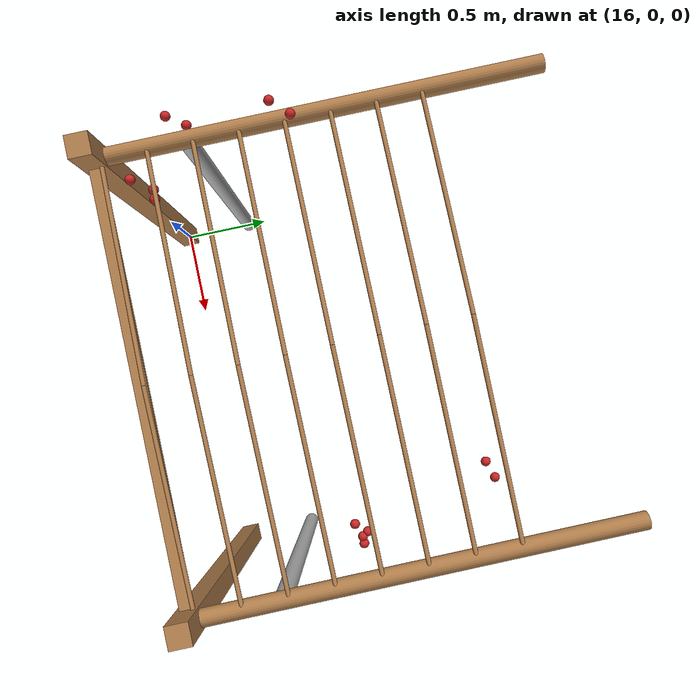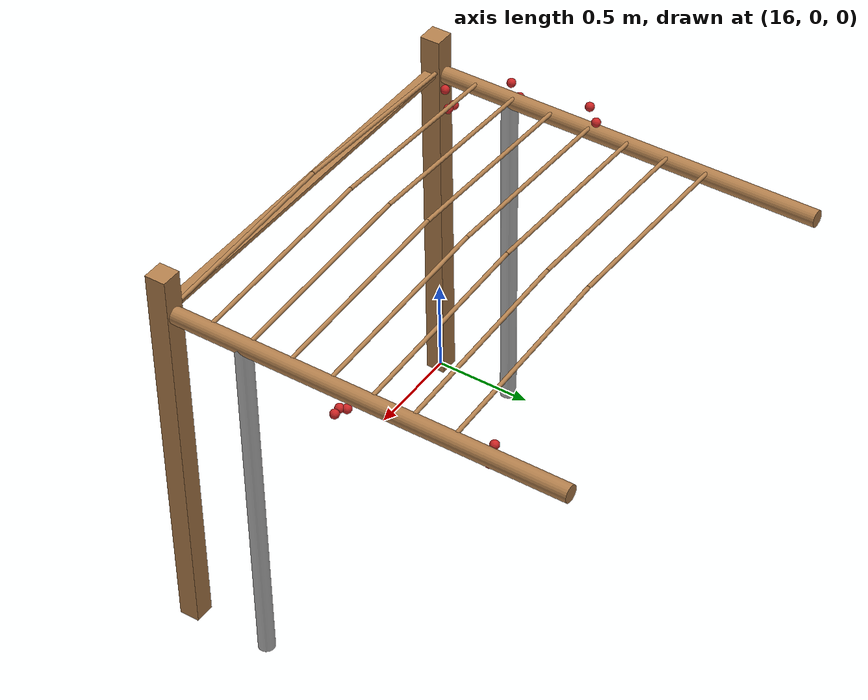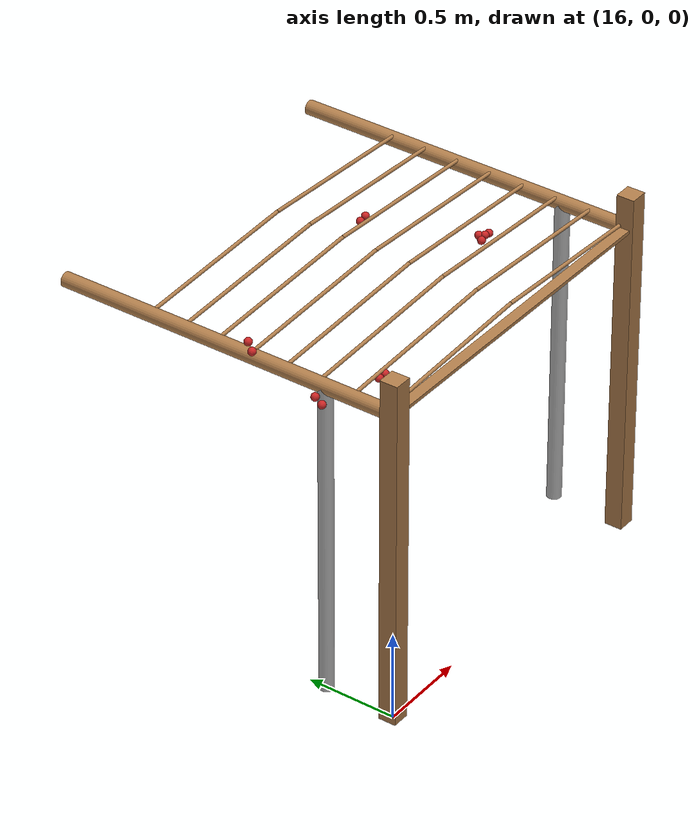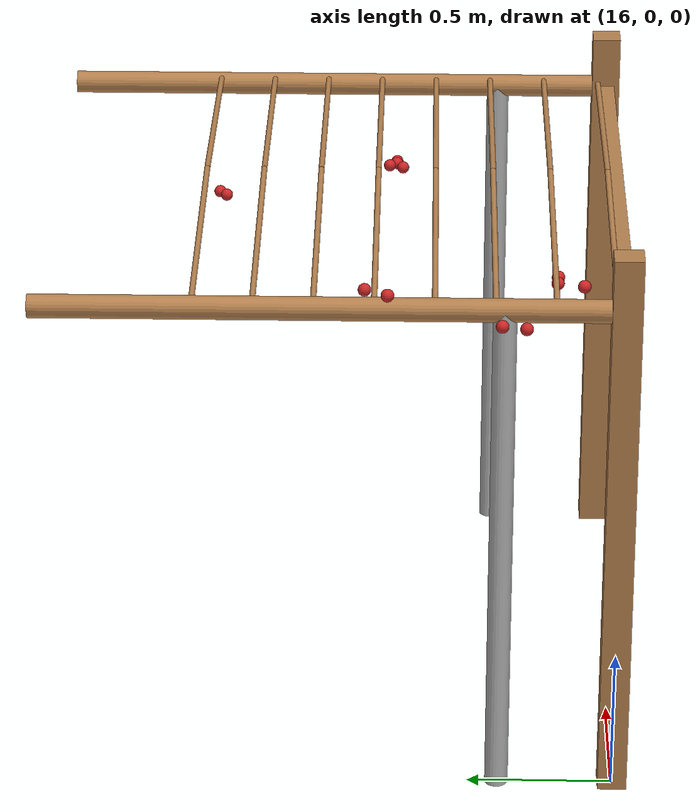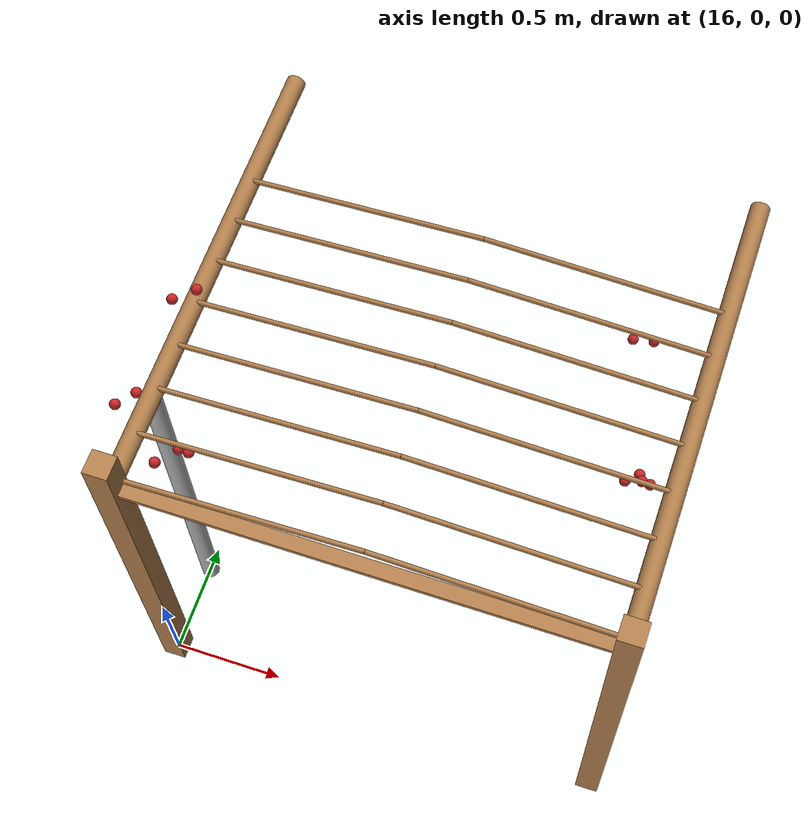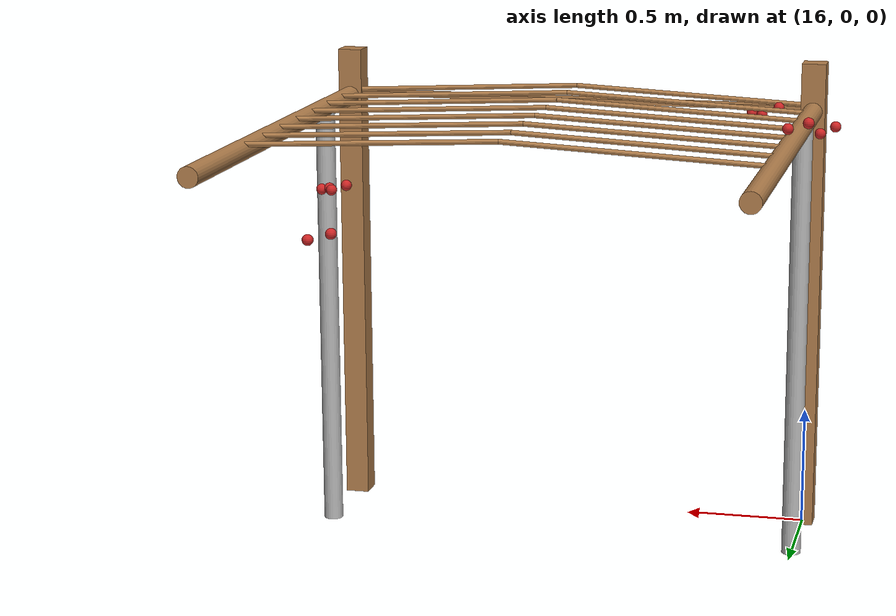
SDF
<sdf version="1.4">
 <model name="pergola">
  <include><name>post_88</name><pose>16.0 0.0 0 0 0 0</pose><uri>model://post</uri></include>
  <include><name>post_99</name><pose>18.0 0.0 0 0 0 0</pose><uri>model://post</uri></include>
  <link name="beam_88">
   <pose>17.0 0.0 1.81 0 0 0</pose>
   <collision name="collision"><geometry><box><size>2.0 0.06 0.02</size></box></geometry></collision>
   <visual name="visual">
    <geometry><box><size>2.0 0.06 0.02</size></box></geometry>
    <material><script><name>Gazebo/Wood</name></script></material>
   </visual>
   <inertial>
    <mass>5</mass>
    <inertia>
     <ixx>0.0016666666666666668</ixx>
     <ixy>0.0</ixy>
     <ixz>0.0</ixz>
     <iyy>1.6681666666666664</iyy>
     <iyz>0.0</iyz>
     <izz>1.6668333333333332</izz>
    </inertia>
   </inertial>
  </link>
  <include><name>tree_80</name><pose>16.0 0.4 0 0 0 0</pose><uri>model://tree_trunk</uri></include>
  <include><name>tree_90</name><pose>18.0 0.4 0 0 0 0</pose><uri>model://tree_trunk</uri></include>
  <link name="baseBranch_80">
   <pose>16.0 1.0 1.8 1.5707963267948966 0 0</pose>
   <collision name="collision">
    <geometry><cylinder><radius>0.04</radius><length>1.94</length></cylinder></geometry>
   </collision>
   <visual name="visual">
    <geometry><cylinder><radius>0.04</radius><length>1.94</length></cylinder></geometry>
    <material><script><name>Gazebo/WoodFloor</name></script></material>
   </visual>
   <inertial>
    <mass>10</mass>
    <inertia>
     <ixx>3.140333333333333</ixx>
     <ixy>0.0</ixy>
     <ixz>0.0</ixz>
     <iyy>3.140333333333333</iyy>
     <iyz>0.0</iyz>
     <izz>0.008</izz>
    </inertia>
   </inertial>
  </link>
  <link name="baseBranch_90">
   <pose>18.0 1.0 1.8 1.5707963267948966 0 0</pose>
   <collision name="collision">
    <geometry><cylinder><radius>0.04</radius><length>1.94</length></cylinder></geometry>
   </collision>
   <visual name="visual">
    <geometry><cylinder><radius>0.04</radius><length>1.94</length></cylinder></geometry>
    <material><script><name>Gazebo/WoodFloor</name></script></material>
   </visual>
   <inertial>
    <mass>10</mass>
    <inertia>
     <ixx>3.140333333333333</ixx>
     <ixy>0.0</ixy>
     <ixz>0.0</ixz>
     <iyy>3.140333333333333</iyy>
     <iyz>0.0</iyz>
     <izz>0.008</izz>
    </inertia>
   </inertial>
  </link>
  <link name="vine_1600">
   <pose>16.5 0.03 1.85 0 1.5208379310729538 0</pose>
   <collision name="collision">
    <geometry><cylinder><radius>0.01</radius><length>1.0012492197250393</length></cylinder></geometry>
   </collision>
   <visual name="visual">
    <geometry><cylinder><radius>0.01</radius><length>1.0012492197250393</length></cylinder></geometry>
    <material><script><name>Gazebo/WoodFloor</name></script></material>
   </visual>
   <inertial>
    <mass>5</mass>
    <inertia>
     <ixx>0.41783333333333345</ixx>
     <ixy>0.0</ixy>
     <ixz>0.0</ixz>
     <iyy>0.41783333333333345</iyy>
     <iyz>0.0</iyz>
     <izz>0.00025</izz>
    </inertia>
   </inertial>
  </link>
  <link name="vine_1601">
   <pose>17.5 0.03 1.85 0 -1.5208379310729538 0</pose>
   <collision name="collision">
    <geometry><cylinder><radius>0.01</radius><length>1.0012492197250393</length></cylinder></geometry>
   </collision>
   <visual name="visual">
    <geometry><cylinder><radius>0.01</radius><length>1.0012492197250393</length></cylinder></geometry>
    <material><script><name>Gazebo/WoodFloor</name></script></material>
   </visual>
   <inertial>
    <mass>5</mass>
    <inertia>
     <ixx>0.41783333333333345</ixx>
     <ixy>0.0</ixy>
     <ixz>0.0</ixz>
     <iyy>0.41783333333333345</iyy>
     <iyz>0.0</iyz>
     <izz>0.00025</izz>
    </inertia>
   </inertial>
  </link>
  <link name="vine_1602">
   <pose>16.5 0.23 1.85 0 1.5208379310729538 0</pose>
   <collision name="collision">
    <geometry><cylinder><radius>0.01</radius><length>1.0012492197250393</length></cylinder></geometry>
   </collision>
   <visual name="visual">
    <geometry><cylinder><radius>0.01</radius><length>1.0012492197250393</length></cylinder></geometry>
    <material><script><name>Gazebo/WoodFloor</name></script></material>
   </visual>
   <inertial>
    <mass>5</mass>
    <inertia>
     <ixx>0.41783333333333345</ixx>
     <ixy>0.0</ixy>
     <ixz>0.0</ixz>
     <iyy>0.41783333333333345</iyy>
     <iyz>0.0</iyz>
     <izz>0.00025</izz>
    </inertia>
   </inertial>
  </link>
  <link name="vine_1603">
   <pose>17.5 0.23 1.85 0 -1.5208379310729538 0</pose>
   <collision name="collision">
    <geometry><cylinder><radius>0.01</radius><length>1.0012492197250393</length></cylinder></geometry>
   </collision>
   <visual name="visual">
    <geometry><cylinder><radius>0.01</radius><length>1.0012492197250393</length></cylinder></geometry>
    <material><script><name>Gazebo/WoodFloor</name></script></material>
   </visual>
   <inertial>
    <mass>5</mass>
    <inertia>
     <ixx>0.41783333333333345</ixx>
     <ixy>0.0</ixy>
     <ixz>0.0</ixz>
     <iyy>0.41783333333333345</iyy>
     <iyz>0.0</iyz>
     <izz>0.00025</izz>
    </inertia>
   </inertial>
  </link>
  <link name="vine_1604">
   <pose>16.5 0.43000000000000005 1.85 0 1.5208379310729538 0</pose>
   <collision name="collision">
    <geometry><cylinder><radius>0.01</radius><length>1.0012492197250393</length></cylinder></geometry>
   </collision>
   <visual name="visual">
    <geometry><cylinder><radius>0.01</radius><length>1.0012492197250393</length></cylinder></geometry>
    <material><script><name>Gazebo/WoodFloor</name></script></material>
   </visual>
   <inertial>
    <mass>5</mass>
    <inertia>
     <ixx>0.41783333333333345</ixx>
     <ixy>0.0</ixy>
     <ixz>0.0</ixz>
     <iyy>0.41783333333333345</iyy>
     <iyz>0.0</iyz>
     <izz>0.00025</izz>
    </inertia>
   </inertial>
  </link>
  <link name="vine_1605">
   <pose>17.5 0.43000000000000005 1.85 0 -1.5208379310729538 0</pose>
   <collision name="collision">
    <geometry><cylinder><radius>0.01</radius><length>1.0012492197250393</length></cylinder></geometry>
   </collision>
   <visual name="visual">
    <geometry><cylinder><radius>0.01</radius><length>1.0012492197250393</length></cylinder></geometry>
    <material><script><name>Gazebo/WoodFloor</name></script></material>
   </visual>
   <inertial>
    <mass>5</mass>
    <inertia>
     <ixx>0.41783333333333345</ixx>
     <ixy>0.0</ixy>
     <ixz>0.0</ixz>
     <iyy>0.41783333333333345</iyy>
     <iyz>0.0</iyz>
     <izz>0.00025</izz>
    </inertia>
   </inertial>
  </link>
  <link name="vine_1606">
   <pose>16.5 0.6300000000000001 1.85 0 1.5208379310729538 0</pose>
   <collision name="collision">
    <geometry><cylinder><radius>0.01</radius><length>1.0012492197250393</length></cylinder></geometry>
   </collision>
   <visual name="visual">
    <geometry><cylinder><radius>0.01</radius><length>1.0012492197250393</length></cylinder></geometry>
    <material><script><name>Gazebo/WoodFloor</name></script></material>
   </visual>
   <inertial>
    <mass>5</mass>
    <inertia>
     <ixx>0.41783333333333345</ixx>
     <ixy>0.0</ixy>
     <ixz>0.0</ixz>
     <iyy>0.41783333333333345</iyy>
     <iyz>0.0</iyz>
     <izz>0.00025</izz>
    </inertia>
   </inertial>
  </link>
  <link name="vine_1607">
   <pose>17.5 0.6300000000000001 1.85 0 -1.5208379310729538 0</pose>
   <collision name="collision">
    <geometry><cylinder><radius>0.01</radius><length>1.0012492197250393</length></cylinder></geometry>
   </collision>
   <visual name="visual">
    <geometry><cylinder><radius>0.01</radius><length>1.0012492197250393</length></cylinder></geometry>
    <material><script><name>Gazebo/WoodFloor</name></script></material>
   </visual>
   <inertial>
    <mass>5</mass>
    <inertia>
     <ixx>0.41783333333333345</ixx>
     <ixy>0.0</ixy>
     <ixz>0.0</ixz>
     <iyy>0.41783333333333345</iyy>
     <iyz>0.0</iyz>
     <izz>0.00025</izz>
    </inertia>
   </inertial>
  </link>
  <link name="vine_1608">
   <pose>16.5 0.8300000000000001 1.85 0 1.5208379310729538 0</pose>
   <collision name="collision">
    <geometry><cylinder><radius>0.01</radius><length>1.0012492197250393</length></cylinder></geometry>
   </collision>
   <visual name="visual">
    <geometry><cylinder><radius>0.01</radius><length>1.0012492197250393</length></cylinder></geometry>
    <material><script><name>Gazebo/WoodFloor</name></script></material>
   </visual>
   <inertial>
    <mass>5</mass>
    <inertia>
     <ixx>0.41783333333333345</ixx>
     <ixy>0.0</ixy>
     <ixz>0.0</ixz>
     <iyy>0.41783333333333345</iyy>
     <iyz>0.0</iyz>
     <izz>0.00025</izz>
    </inertia>
   </inertial>
  </link>
  <link name="vine_1609">
   <pose>17.5 0.8300000000000001 1.85 0 -1.5208379310729538 0</pose>
   <collision name="collision">
    <geometry><cylinder><radius>0.01</radius><length>1.0012492197250393</length></cylinder></geometry>
   </collision>
   <visual name="visual">
    <geometry><cylinder><radius>0.01</radius><length>1.0012492197250393</length></cylinder></geometry>
    <material><script><name>Gazebo/WoodFloor</name></script></material>
   </visual>
   <inertial>
    <mass>5</mass>
    <inertia>
     <ixx>0.41783333333333345</ixx>
     <ixy>0.0</ixy>
     <ixz>0.0</ixz>
     <iyy>0.41783333333333345</iyy>
     <iyz>0.0</iyz>
     <izz>0.00025</izz>
    </inertia>
   </inertial>
  </link>
  <link name="vine_1610">
   <pose>16.5 1.03 1.85 0 1.5208379310729538 0</pose>
   <collision name="collision">
    <geometry><cylinder><radius>0.01</radius><length>1.0012492197250393</length></cylinder></geometry>
   </collision>
   <visual name="visual">
    <geometry><cylinder><radius>0.01</radius><length>1.0012492197250393</length></cylinder></geometry>
    <material><script><name>Gazebo/WoodFloor</name></script></material>
   </visual>
   <inertial>
    <mass>5</mass>
    <inertia>
     <ixx>0.41783333333333345</ixx>
     <ixy>0.0</ixy>
     <ixz>0.0</ixz>
     <iyy>0.41783333333333345</iyy>
     <iyz>0.0</iyz>
     <izz>0.00025</izz>
    </inertia>
   </inertial>
  </link>
  <link name="vine_1611">
   <pose>17.5 1.03 1.85 0 -1.5208379310729538 0</pose>
   <collision name="collision">
    <geometry><cylinder><radius>0.01</radius><length>1.0012492197250393</length></cylinder></geometry>
   </collision>
   <visual name="visual">
    <geometry><cylinder><radius>0.01</radius><length>1.0012492197250393</length></cylinder></geometry>
    <material><script><name>Gazebo/WoodFloor</name></script></material>
   </visual>
   <inertial>
    <mass>5</mass>
    <inertia>
     <ixx>0.41783333333333345</ixx>
     <ixy>0.0</ixy>
     <ixz>0.0</ixz>
     <iyy>0.41783333333333345</iyy>
     <iyz>0.0</iyz>
     <izz>0.00025</izz>
    </inertia>
   </inertial>
  </link>
  <link name="vine_1612">
   <pose>16.5 1.2300000000000002 1.85 0 1.5208379310729538 0</pose>
   <collision name="collision">
    <geometry><cylinder><radius>0.01</radius><length>1.0012492197250393</length></cylinder></geometry>
   </collision>
   <visual name="visual">
    <geometry><cylinder><radius>0.01</radius><length>1.0012492197250393</length></cylinder></geometry>
    <material><script><name>Gazebo/WoodFloor</name></script></material>
   </visual>
   <inertial>
    <mass>5</mass>
    <inertia>
     <ixx>0.41783333333333345</ixx>
     <ixy>0.0</ixy>
     <ixz>0.0</ixz>
     <iyy>0.41783333333333345</iyy>
     <iyz>0.0</iyz>
     <izz>0.00025</izz>
    </inertia>
   </inertial>
  </link>
  <link name="vine_1613">
   <pose>17.5 1.2300000000000002 1.85 0 -1.5208379310729538 0</pose>
   <collision name="collision">
    <geometry><cylinder><radius>0.01</radius><length>1.0012492197250393</length></cylinder></geometry>
   </collision>
   <visual name="visual">
    <geometry><cylinder><radius>0.01</radius><length>1.0012492197250393</length></cylinder></geometry>
    <material><script><name>Gazebo/WoodFloor</name></script></material>
   </visual>
   <inertial>
    <mass>5</mass>
    <inertia>
     <ixx>0.41783333333333345</ixx>
     <ixy>0.0</ixy>
     <ixz>0.0</ixz>
     <iyy>0.41783333333333345</iyy>
     <iyz>0.0</iyz>
     <izz>0.00025</izz>
    </inertia>
   </inertial>
  </link>
  <link name="vine_1614">
   <pose>16.5 1.4300000000000002 1.85 0 1.5208379310729538 0</pose>
   <collision name="collision">
    <geometry><cylinder><radius>0.01</radius><length>1.0012492197250393</length></cylinder></geometry>
   </collision>
   <visual name="visual">
    <geometry><cylinder><radius>0.01</radius><length>1.0012492197250393</length></cylinder></geometry>
    <material><script><name>Gazebo/WoodFloor</name></script></material>
   </visual>
   <inertial>
    <mass>5</mass>
    <inertia>
     <ixx>0.41783333333333345</ixx>
     <ixy>0.0</ixy>
     <ixz>0.0</ixz>
     <iyy>0.41783333333333345</iyy>
     <iyz>0.0</iyz>
     <izz>0.00025</izz>
    </inertia>
   </inertial>
  </link>
  <link name="vine_1615">
   <pose>17.5 1.4300000000000002 1.85 0 -1.5208379310729538 0</pose>
   <collision name="collision">
    <geometry><cylinder><radius>0.01</radius><length>1.0012492197250393</length></cylinder></geometry>
   </collision>
   <visual name="visual">
    <geometry><cylinder><radius>0.01</radius><length>1.0012492197250393</length></cylinder></geometry>
    <material><script><name>Gazebo/WoodFloor</name></script></material>
   </visual>
   <inertial>
    <mass>5</mass>
    <inertia>
     <ixx>0.41783333333333345</ixx>
     <ixy>0.0</ixy>
     <ixz>0.0</ixz>
     <iyy>0.41783333333333345</iyy>
     <iyz>0.0</iyz>
     <izz>0.00025</izz>
    </inertia>
   </inertial>
  </link>
  <link name="fruit_54">
   <pose>17.80197323627862 0.7494574462967124 1.5469227794787848 0 0 0</pose>
   <collision name="fruit_collision_54"><geometry><sphere><radius>0.022</radius></sphere></geometry></collision>
   <visual name="visual">
    <geometry><sphere><radius>0.022</radius></sphere></geometry>
    <material><script><name>Gazebo/Red</name></script></material>
   </visual>
   <inertial>
    <mass>0.05</mass>
    <inertia>
     <ixx>9.679999999999999e-06</ixx>
     <ixy>0.0</ixy>
     <ixz>0.0</ixz>
     <iyy>9.679999999999999e-06</iyy>
     <iyz>0.0</iyz>
     <izz>9.679999999999999e-06</izz>
    </inertia>
   </inertial>
   <sensor name="fruit_contact_54" type="contact">
    <contact><collision>fruit_collision_54</collision></contact>
   </sensor>
  </link>
  <link name="fruit_109">
   <pose>16.12942814386299 0.13662016198055116 1.8289526632430237 0 0 0</pose>
   <collision name="fruit_collision_109"><geometry><sphere><radius>0.022</radius></sphere></geometry></collision>
   <visual name="visual">
    <geometry><sphere><radius>0.022</radius></sphere></geometry>
    <material><script><name>Gazebo/Red</name></script></material>
   </visual>
   <inertial>
    <mass>0.05</mass>
    <inertia>
     <ixx>9.679999999999999e-06</ixx>
     <ixy>0.0</ixy>
     <ixz>0.0</ixz>
     <iyy>9.679999999999999e-06</iyy>
     <iyz>0.0</iyz>
     <izz>9.679999999999999e-06</izz>
    </inertia>
   </inertial>
   <sensor name="fruit_contact_109" type="contact">
    <contact><collision>fruit_collision_109</collision></contact>
   </sensor>
  </link>
  <link name="fruit_191">
   <pose>17.659565882335762 1.3989923174970296 1.491595372487841 0 0 0</pose>
   <collision name="fruit_collision_191"><geometry><sphere><radius>0.022</radius></sphere></geometry></collision>
   <visual name="visual">
    <geometry><sphere><radius>0.022</radius></sphere></geometry>
    <material><script><name>Gazebo/Red</name></script></material>
   </visual>
   <inertial>
    <mass>0.05</mass>
    <inertia>
     <ixx>9.679999999999999e-06</ixx>
     <ixy>0.0</ixy>
     <ixz>0.0</ixz>
     <iyy>9.679999999999999e-06</iyy>
     <iyz>0.0</iyz>
     <izz>9.679999999999999e-06</izz>
    </inertia>
   </inertial>
   <sensor name="fruit_contact_191" type="contact">
    <contact><collision>fruit_collision_191</collision></contact>
   </sensor>
  </link>
  <link name="fruit_251">
   <pose>15.938389276953494 0.7853255801179403 1.877329554396052 0 0 0</pose>
   <collision name="fruit_collision_251"><geometry><sphere><radius>0.022</radius></sphere></geometry></collision>
   <visual name="visual">
    <geometry><sphere><radius>0.022</radius></sphere></geometry>
    <material><script><name>Gazebo/Red</name></script></material>
   </visual>
   <inertial>
    <mass>0.05</mass>
    <inertia>
     <ixx>9.679999999999999e-06</ixx>
     <ixy>0.0</ixy>
     <ixz>0.0</ixz>
     <iyy>9.679999999999999e-06</iyy>
     <iyz>0.0</iyz>
     <izz>9.679999999999999e-06</izz>
    </inertia>
   </inertial>
   <sensor name="fruit_contact_251" type="contact">
    <contact><collision>fruit_collision_251</collision></contact>
   </sensor>
  </link>
  <link name="fruit_340">
   <pose>15.877519984525017 0.3305308835755753 1.7899341697193938 0 0 0</pose>
   <collision name="fruit_collision_340"><geometry><sphere><radius>0.022</radius></sphere></geometry></collision>
   <visual name="visual">
    <geometry><sphere><radius>0.022</radius></sphere></geometry>
    <material><script><name>Gazebo/Red</name></script></material>
   </visual>
   <inertial>
    <mass>0.05</mass>
    <inertia>
     <ixx>9.679999999999999e-06</ixx>
     <ixy>0.0</ixy>
     <ixz>0.0</ixz>
     <iyy>9.679999999999999e-06</iyy>
     <iyz>0.0</iyz>
     <izz>9.679999999999999e-06</izz>
    </inertia>
   </inertial>
   <sensor name="fruit_contact_340" type="contact">
    <contact><collision>fruit_collision_340</collision></contact>
   </sensor>
  </link>
  <link name="fruit_593">
   <pose>16.008436729031178 0.8613753374083495 1.865213737577755 0 0 0</pose>
   <collision name="fruit_collision_593"><geometry><sphere><radius>0.022</radius></sphere></geometry></collision>
   <visual name="visual">
    <geometry><sphere><radius>0.022</radius></sphere></geometry>
    <material><script><name>Gazebo/Red</name></script></material>
   </visual>
   <inertial>
    <mass>0.05</mass>
    <inertia>
     <ixx>9.679999999999999e-06</ixx>
     <ixy>0.0</ixy>
     <ixz>0.0</ixz>
     <iyy>9.679999999999999e-06</iyy>
     <iyz>0.0</iyz>
     <izz>9.679999999999999e-06</izz>
    </inertia>
   </inertial>
   <sensor name="fruit_contact_593" type="contact">
    <contact><collision>fruit_collision_593</collision></contact>
   </sensor>
  </link>
  <link name="fruit_618">
   <pose>17.899082345723617 0.7717974142655247 1.531407745520643 0 0 0</pose>
   <collision name="fruit_collision_618"><geometry><sphere><radius>0.022</radius></sphere></geometry></collision>
   <visual name="visual">
    <geometry><sphere><radius>0.022</radius></sphere></geometry>
    <material><script><name>Gazebo/Red</name></script></material>
   </visual>
   <inertial>
    <mass>0.05</mass>
    <inertia>
     <ixx>9.679999999999999e-06</ixx>
     <ixy>0.0</ixy>
     <ixz>0.0</ixz>
     <iyy>9.679999999999999e-06</iyy>
     <iyz>0.0</iyz>
     <izz>9.679999999999999e-06</izz>
    </inertia>
   </inertial>
   <sensor name="fruit_contact_618" type="contact">
    <contact><collision>fruit_collision_618</collision></contact>
   </sensor>
  </link>
  <link name="fruit_742">
   <pose>16.18751564703939 0.22243454750199723 1.8132605304490113 0 0 0</pose>
   <collision name="fruit_collision_742"><geometry><sphere><radius>0.022</radius></sphere></geometry></collision>
   <visual name="visual">
    <geometry><sphere><radius>0.022</radius></sphere></geometry>
    <material><script><name>Gazebo/Red</name></script></material>
   </visual>
   <inertial>
    <mass>0.05</mass>
    <inertia>
     <ixx>9.679999999999999e-06</ixx>
     <ixy>0.0</ixy>
     <ixz>0.0</ixz>
     <iyy>9.679999999999999e-06</iyy>
     <iyz>0.0</iyz>
     <izz>9.679999999999999e-06</izz>
    </inertia>
   </inertial>
   <sensor name="fruit_contact_742" type="contact">
    <contact><collision>fruit_collision_742</collision></contact>
   </sensor>
  </link>
  <link name="fruit_745">
   <pose>17.865391183661355 0.7728475685295919 1.5375898281671372 0 0 0</pose>
   <collision name="fruit_collision_745"><geometry><sphere><radius>0.022</radius></sphere></geometry></collision>
   <visual name="visual">
    <geometry><sphere><radius>0.022</radius></sphere></geometry>
    <material><script><name>Gazebo/Red</name></script></material>
   </visual>
   <inertial>
    <mass>0.05</mass>
    <inertia>
     <ixx>9.679999999999999e-06</ixx>
     <ixy>0.0</ixy>
     <ixz>0.0</ixz>
     <iyy>9.679999999999999e-06</iyy>
     <iyz>0.0</iyz>
     <izz>9.679999999999999e-06</izz>
    </inertia>
   </inertial>
   <sensor name="fruit_contact_745" type="contact">
    <contact><collision>fruit_collision_745</collision></contact>
   </sensor>
  </link>
  <link name="fruit_771">
   <pose>17.848839577828375 0.7992353422210567 1.5354379411632235 0 0 0</pose>
   <collision name="fruit_collision_771"><geometry><sphere><radius>0.022</radius></sphere></geometry></collision>
   <visual name="visual">
    <geometry><sphere><radius>0.022</radius></sphere></geometry>
    <material><script><name>Gazebo/Red</name></script></material>
   </visual>
   <inertial>
    <mass>0.05</mass>
    <inertia>
     <ixx>9.679999999999999e-06</ixx>
     <ixy>0.0</ixy>
     <ixz>0.0</ixz>
     <iyy>9.679999999999999e-06</iyy>
     <iyz>0.0</iyz>
     <izz>9.679999999999999e-06</izz>
    </inertia>
   </inertial>
   <sensor name="fruit_contact_771" type="contact">
    <contact><collision>fruit_collision_771</collision></contact>
   </sensor>
  </link>
  <link name="fruit_776">
   <pose>17.742632999103474 1.4275422561780562 1.469791203520226 0 0 0</pose>
   <collision name="fruit_collision_776"><geometry><sphere><radius>0.022</radius></sphere></geometry></collision>
   <visual name="visual">
    <geometry><sphere><radius>0.022</radius></sphere></geometry>
    <material><script><name>Gazebo/Red</name></script></material>
   </visual>
   <inertial>
    <mass>0.05</mass>
    <inertia>
     <ixx>9.679999999999999e-06</ixx>
     <ixy>0.0</ixy>
     <ixz>0.0</ixz>
     <iyy>9.679999999999999e-06</iyy>
     <iyz>0.0</iyz>
     <izz>9.679999999999999e-06</izz>
    </inertia>
   </inertial>
   <sensor name="fruit_contact_776" type="contact">
    <contact><collision>fruit_collision_776</collision></contact>
   </sensor>
  </link>
  <link name="fruit_785">
   <pose>15.92976838518759 0.40921543697485807 1.7737791392650362 0 0 0</pose>
   <collision name="fruit_collision_785"><geometry><sphere><radius>0.022</radius></sphere></geometry></collision>
   <visual name="visual">
    <geometry><sphere><radius>0.022</radius></sphere></geometry>
    <material><script><name>Gazebo/Red</name></script></material>
   </visual>
   <inertial>
    <mass>0.05</mass>
    <inertia>
     <ixx>9.679999999999999e-06</ixx>
     <ixy>0.0</ixy>
     <ixz>0.0</ixz>
     <iyy>9.679999999999999e-06</iyy>
     <iyz>0.0</iyz>
     <izz>9.679999999999999e-06</izz>
    </inertia>
   </inertial>
   <sensor name="fruit_contact_785" type="contact">
    <contact><collision>fruit_collision_785</collision></contact>
   </sensor>
  </link>
  <link name="fruit_946">
   <pose>16.22987326171127 0.22021124916022025 1.8164189719950523 0 0 0</pose>
   <collision name="fruit_collision_946"><geometry><sphere><radius>0.022</radius></sphere></geometry></collision>
   <visual name="visual">
    <geometry><sphere><radius>0.022</radius></sphere></geometry>
    <material><script><name>Gazebo/Red</name></script></material>
   </visual>
   <inertial>
    <mass>0.05</mass>
    <inertia>
     <ixx>9.679999999999999e-06</ixx>
     <ixy>0.0</ixy>
     <ixz>0.0</ixz>
     <iyy>9.679999999999999e-06</iyy>
     <iyz>0.0</iyz>
     <izz>9.679999999999999e-06</izz>
    </inertia>
   </inertial>
   <sensor name="fruit_contact_946" type="contact">
    <contact><collision>fruit_collision_946</collision></contact>
   </sensor>
  </link>
 </model>
</sdf>
